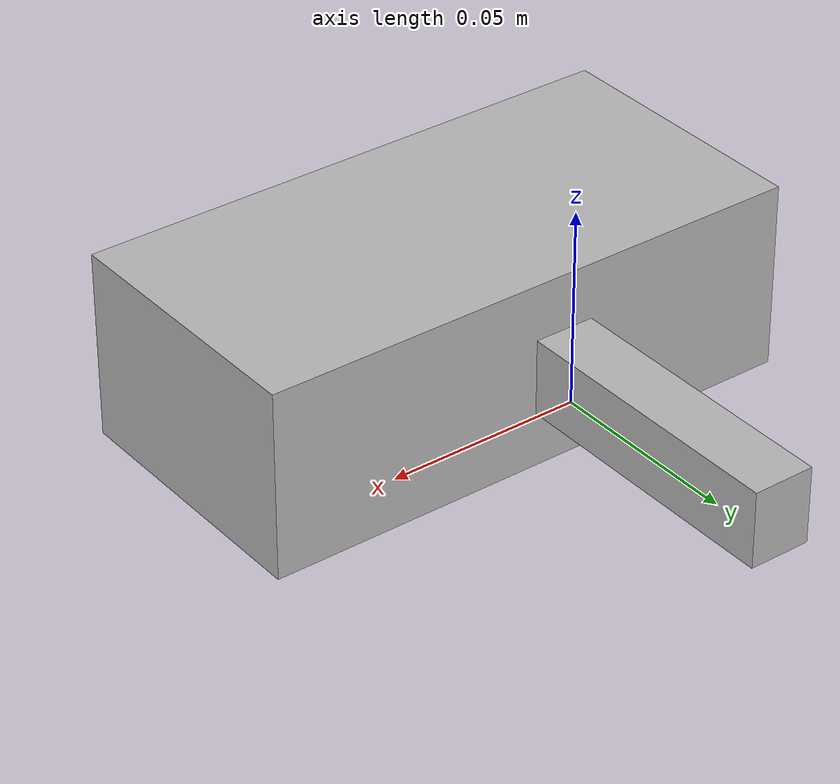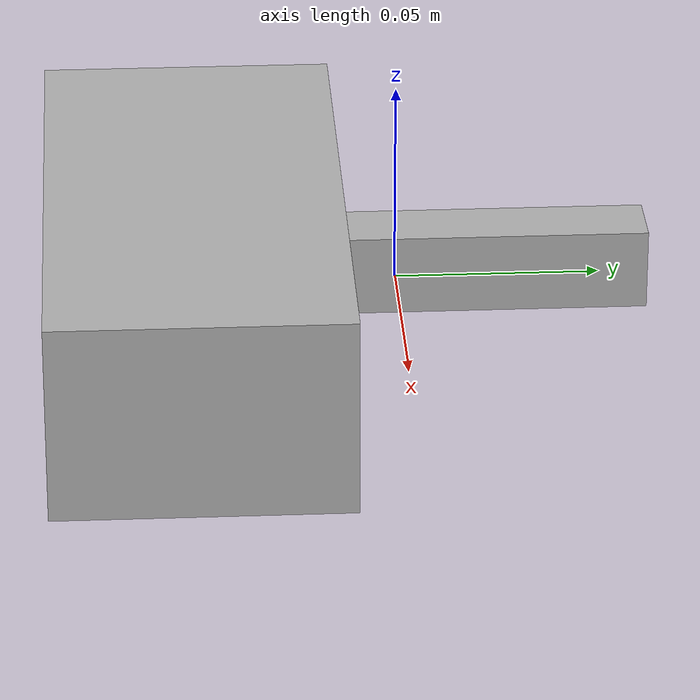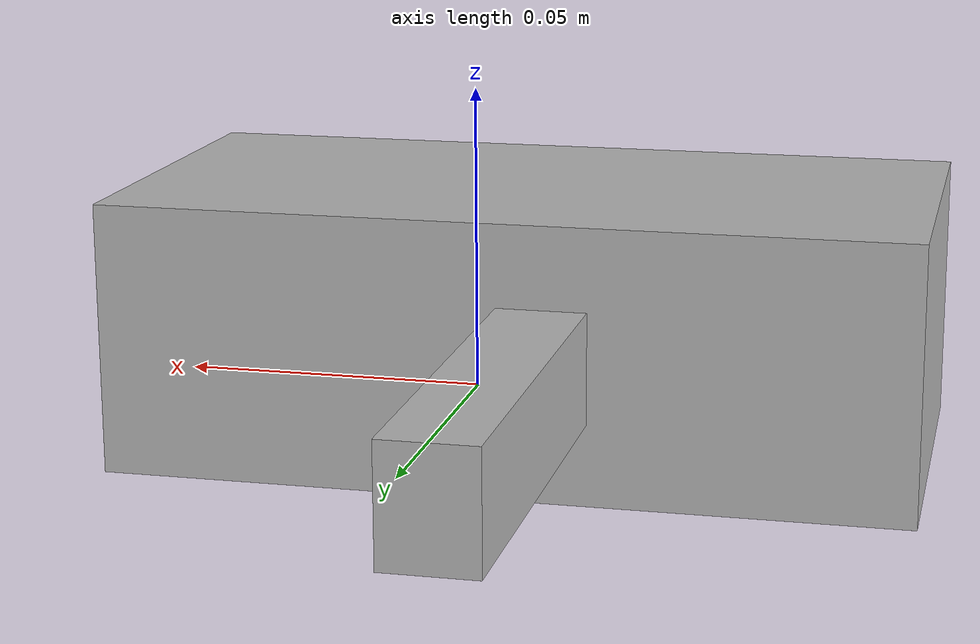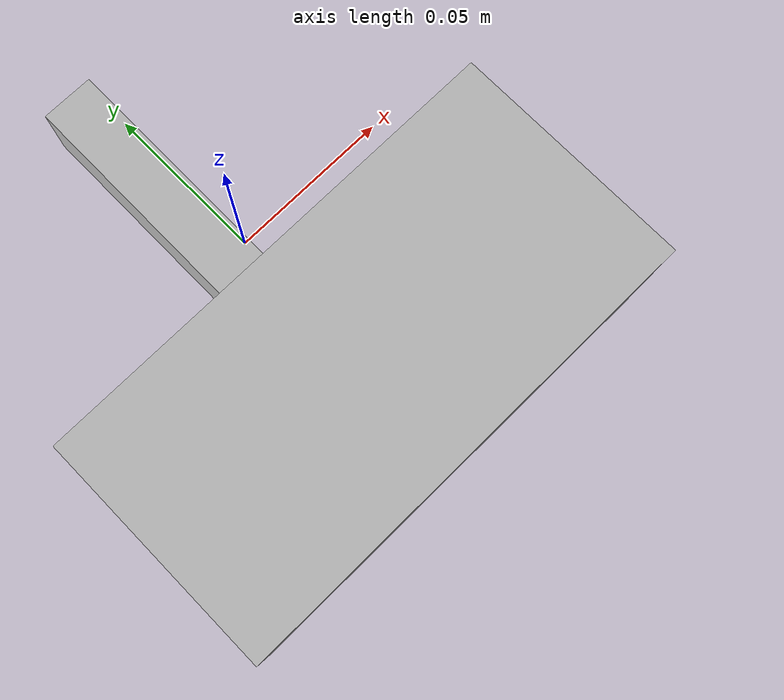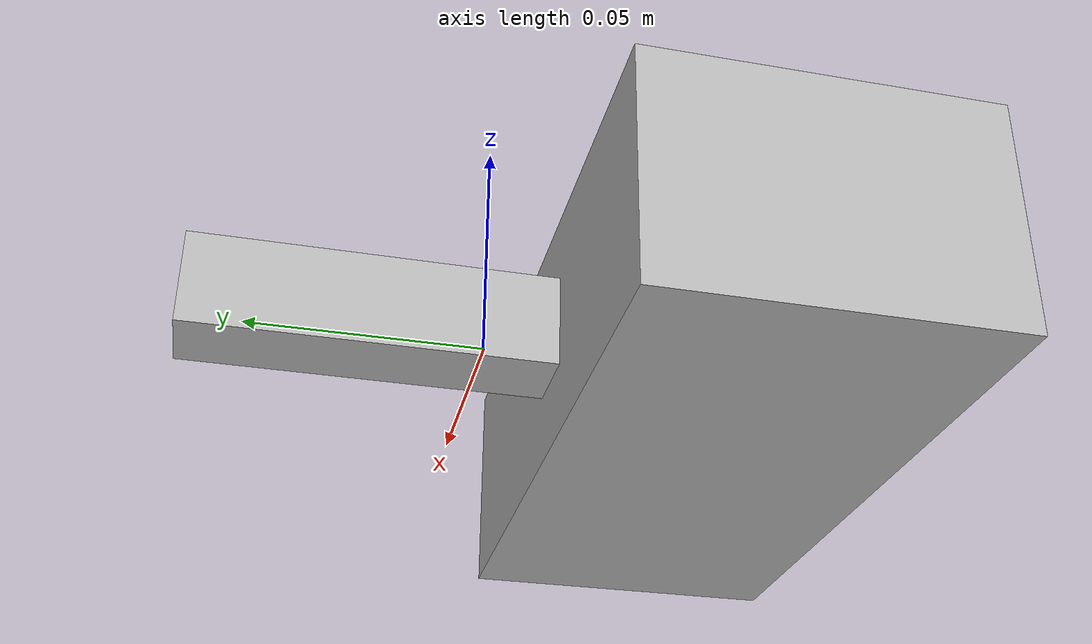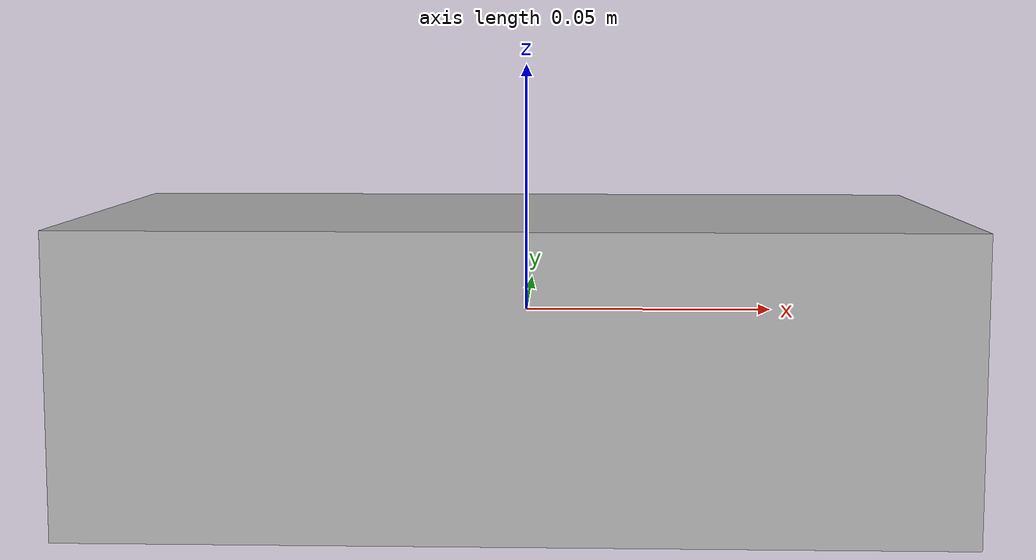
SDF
<?xml version='1.0'?>
<sdf version='1.6'>
  <model name='limited_prismatic_test_model'>
    <link name='body'>
      <pose frame=''>0 -0.049133 0 0 -0 0</pose>
      <inertial>
        <mass>1</mass>
        <inertia>
          <ixx>0.162992</ixx>
          <ixy>0</ixy>
          <ixz>0</ixz>
          <iyy>0.162992</iyy>
          <iyz>0</iyz>
          <izz>0.164814</izz>
        </inertia>
        <pose frame=''>0 0 0 0 -0 0</pose>
      </inertial>
      <self_collide>0</self_collide>
      <kinematic>0</kinematic>
      <visual name='visual'>
        <pose frame=''>0 0 0 0 -0 0</pose>
        <geometry>
          <box>
            <size>0.146 0.0725 0.049521</size>
          </box>
        </geometry>
      </visual>
    </link>
    <link name='finger'>
      <pose frame=''>-0.008016 0.024751 0 0 -0 0</pose>
      <inertial>
        <mass>1</mass>
        <inertia>
          <ixx>0.16</ixx>
          <ixy>0</ixy>
          <ixz>0</ixz>
          <iyy>0.16</iyy>
          <iyz>0</iyz>
          <izz>0.16</izz>
        </inertia>
        <pose frame=''>0 0 0 0 -0 0</pose>
      </inertial>
      <self_collide>0</self_collide>
      <kinematic>0</kinematic>
      <visual name='visual'>
        <pose frame=''>0 0 0 0 -0 0</pose>
        <geometry>
          <box>
            <size>0.016 0.075 0.02</size>
          </box>
        </geometry>
      </visual>
    </link>
    <joint name='finger_sliding_joint' type='prismatic'>
      <parent>body</parent>
      <child>finger</child>
      <pose frame=''>0 0 0 0 -0 0</pose>
      <axis>
        <xyz>1 0 0</xyz>
        <use_parent_model_frame>0</use_parent_model_frame>
        <!-- Drake attaches an actuator to all and only joints with a nonzero
             effort limit. -->
        <limit>
          <lower>-1</lower>
          <upper>1</upper>
          <effort>80</effort>
          <stiffness>15000</stiffness>
          <dissipation>1</dissipation>
        </limit>
        <dynamics>
          <spring_reference>0</spring_reference>
          <spring_stiffness>0</spring_stiffness>
          <damping>0</damping>
          <friction>0</friction>
        </dynamics>
      </axis>
    </joint>
    <static>0</static>
    <allow_auto_disable>1</allow_auto_disable>
  </model>
</sdf>
